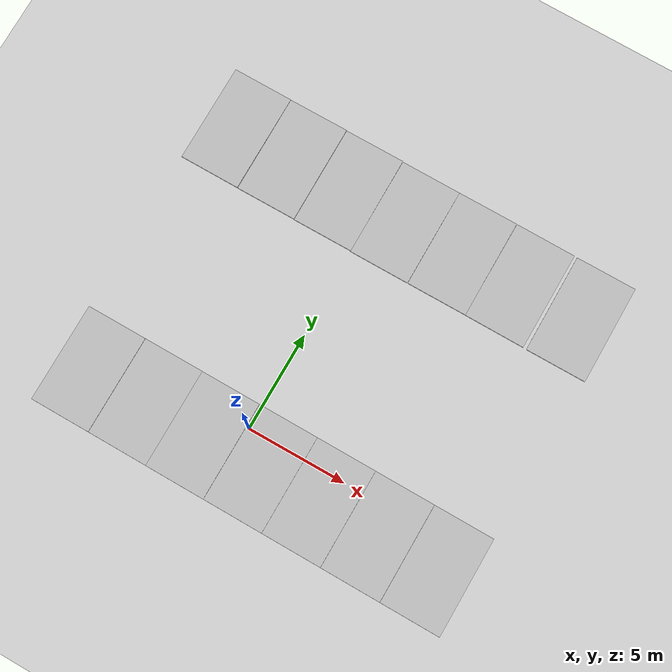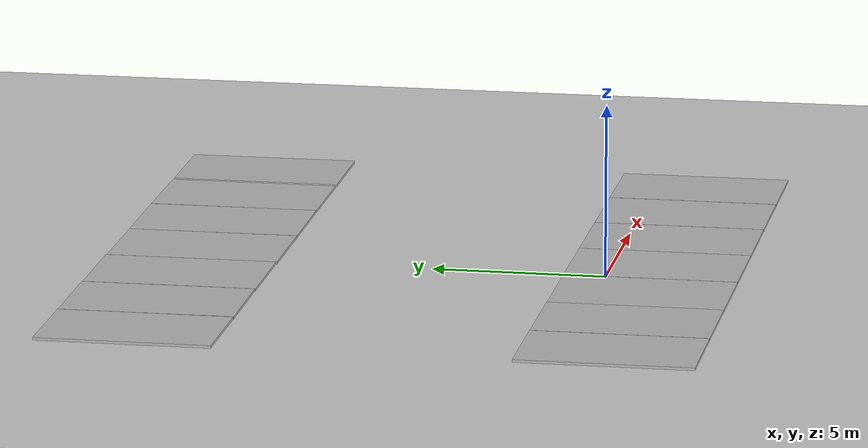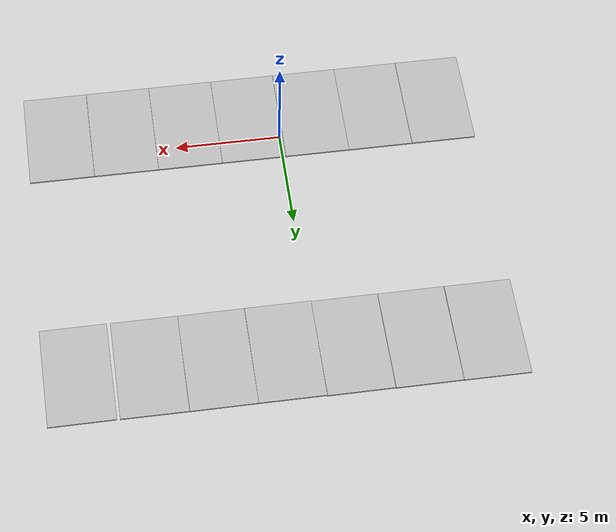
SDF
<sdf version="1.6">
 <world name="default">
  <light name="sun" type="directional">
   <pose>0 0 10 0 -0 0</pose>
   <diffuse>0.8 0.8 0.8 1</diffuse>
   <specular>0.2 0.2 0.2 1</specular>
   <attenuation>
    <range>1000</range>
    <constant>0.9</constant>
    <linear>0.01</linear>
    <quadratic>0.001</quadratic>
   </attenuation>
   <direction>-0.5 0.1 -0.9</direction>
  </light>
  <model name="ground_plane">
   <static>1</static>
   <link name="link">
    <collision name="collision">
     <geometry><plane><normal>0 0 1</normal><size>100 100</size></plane></geometry>
     <surface>
      <contact><collide_bitmask>65535</collide_bitmask></contact>
      <friction><ode><mu>100</mu><mu2>50</mu2></ode></friction>
     </surface>
    </collision>
    <visual name="visual">
     <cast_shadows>0</cast_shadows>
     <geometry><plane><normal>0 0 1</normal><size>100 100</size></plane></geometry>
     <material>
      <script><uri>file://media/materials/scripts/gazebo.material</uri><name>Gazebo/Grey</name></script>
     </material>
    </visual>
   </link>
  </model>
  <gravity>0 0 -9.8</gravity>
  <magnetic_field>6e-06 2.3e-05 -4.2e-05</magnetic_field>
  <atmosphere type="adiabatic"/>
  <physics name="default_physics" default="0" type="ode">
   <max_step_size>0.001</max_step_size>
   <real_time_factor>1</real_time_factor>
   <real_time_update_rate>1000</real_time_update_rate>
  </physics>
  <scene><ambient>0.4 0.4 0.4 1</ambient><background>0.7 0.7 0.7 1</background><shadows>1</shadows></scene>
  <spherical_coordinates>
   <surface_model>EARTH_WGS84</surface_model>
   <latitude_deg>0</latitude_deg>
   <longitude_deg>0</longitude_deg>
   <elevation>0</elevation>
   <heading_deg>0</heading_deg>
  </spherical_coordinates>
  <model name="parking_space_yellow">
   <pose>-1.68805 -1.30823 0 0 -0 0</pose>
   <static>1</static>
   <link name="link">
    <inertial>
     <mass>1</mass>
     <inertia><ixx>1</ixx><iyy>1</iyy><izz>1</izz><ixy>0</ixy><ixz>0</ixz><iyz>0</iyz></inertia>
    </inertial>
    <visual name="visual">
     <geometry><mesh><uri>model://parking_space_yellow/meshes/parking_space.dae</uri></mesh></geometry>
    </visual>
    <collision name="collision">
     <geometry><mesh><uri>model://parking_space_yellow/meshes/parking_space.dae</uri></mesh></geometry>
    </collision>
   </link>
  </model>
  <model name="parking_space">
   <pose>1.36926 -1.30707 0 0 -0 0</pose>
   <static>1</static>
   <link name="link">
    <inertial>
     <mass>1</mass>
     <inertia><ixx>1</ixx><iyy>1</iyy><izz>1</izz><ixy>0</ixy><ixz>0</ixz><iyz>0</iyz></inertia>
    </inertial>
    <visual name="visual">
     <geometry><mesh><uri>model://parking_space/meshes/parking_space.dae</uri></mesh></geometry>
    </visual>
    <collision name="collision">
     <geometry><mesh><uri>model://parking_space/meshes/parking_space.dae</uri></mesh></geometry>
    </collision>
   </link>
  </model>
  <model name="parking_space_yellow_0">
   <pose>-4.73656 -1.30415 0 0 -0 0</pose>
   <static>1</static>
   <link name="link">
    <inertial>
     <mass>1</mass>
     <inertia><ixx>1</ixx><iyy>1</iyy><izz>1</izz><ixy>0</ixy><ixz>0</ixz><iyz>0</iyz></inertia>
    </inertial>
    <visual name="visual">
     <geometry><mesh><uri>model://parking_space_yellow/meshes/parking_space.dae</uri></mesh></geometry>
    </visual>
    <collision name="collision">
     <geometry><mesh><uri>model://parking_space_yellow/meshes/parking_space.dae</uri></mesh></geometry>
    </collision>
   </link>
  </model>
  <model name="parking_space_yellow_1">
   <pose>-7.79654 -1.30415 0 0 -0 0</pose>
   <static>1</static>
   <link name="link">
    <inertial>
     <mass>1</mass>
     <inertia><ixx>1</ixx><iyy>1</iyy><izz>1</izz><ixy>0</ixy><ixz>0</ixz><iyz>0</iyz></inertia>
    </inertial>
    <visual name="visual">
     <geometry><mesh><uri>model://parking_space_yellow/meshes/parking_space.dae</uri></mesh></geometry>
    </visual>
    <collision name="collision">
     <geometry><mesh><uri>model://parking_space_yellow/meshes/parking_space.dae</uri></mesh></geometry>
    </collision>
   </link>
  </model>
  <model name="parking_space_yellow_2">
   <pose>4.42116 -1.30738 0 0 -0 0</pose>
   <static>1</static>
   <link name="link">
    <inertial>
     <mass>1</mass>
     <inertia><ixx>1</ixx><iyy>1</iyy><izz>1</izz><ixy>0</ixy><ixz>0</ixz><iyz>0</iyz></inertia>
    </inertial>
    <visual name="visual">
     <geometry><mesh><uri>model://parking_space_yellow/meshes/parking_space.dae</uri></mesh></geometry>
    </visual>
    <collision name="collision">
     <geometry><mesh><uri>model://parking_space_yellow/meshes/parking_space.dae</uri></mesh></geometry>
    </collision>
   </link>
  </model>
  <model name="parking_space_yellow_3">
   <pose>7.47595 -1.30903 0 0 -0 0</pose>
   <static>1</static>
   <link name="link">
    <inertial>
     <mass>1</mass>
     <inertia><ixx>1</ixx><iyy>1</iyy><izz>1</izz><ixy>0</ixy><ixz>0</ixz><iyz>0</iyz></inertia>
    </inertial>
    <visual name="visual">
     <geometry><mesh><uri>model://parking_space_yellow/meshes/parking_space.dae</uri></mesh></geometry>
    </visual>
    <collision name="collision">
     <geometry><mesh><uri>model://parking_space_yellow/meshes/parking_space.dae</uri></mesh></geometry>
    </collision>
   </link>
  </model>
  <model name="parking_space_yellow_4">
   <pose>10.5374 -1.30903 0 0 -0 0</pose>
   <static>1</static>
   <link name="link">
    <inertial>
     <mass>1</mass>
     <inertia><ixx>1</ixx><iyy>1</iyy><izz>1</izz><ixy>0</ixy><ixz>0</ixz><iyz>0</iyz></inertia>
    </inertial>
    <visual name="visual">
     <geometry><mesh><uri>model://parking_space_yellow/meshes/parking_space.dae</uri></mesh></geometry>
    </visual>
    <collision name="collision">
     <geometry><mesh><uri>model://parking_space_yellow/meshes/parking_space.dae</uri></mesh></geometry>
    </collision>
   </link>
  </model>
  <model name="parking_space_yellow_4_clone">
   <pose>10.6773 12.0296 0 0 -0 -3.13612</pose>
   <static>1</static>
   <link name="link">
    <inertial>
     <mass>1</mass>
     <inertia><ixx>1</ixx><iyy>1</iyy><izz>1</izz><ixy>0</ixy><ixz>0</ixz><iyz>0</iyz></inertia>
    </inertial>
    <visual name="visual">
     <geometry><mesh><uri>model://parking_space_yellow/meshes/parking_space.dae</uri></mesh></geometry>
    </visual>
    <collision name="collision">
     <geometry><mesh><uri>model://parking_space_yellow/meshes/parking_space.dae</uri></mesh></geometry>
    </collision>
   </link>
  </model>
  <model name="parking_space_yellow_4_clone_clone_0">
   <pose>4.41536 12.0245 0 0 0 -3.13612</pose>
   <static>1</static>
   <link name="link">
    <inertial>
     <mass>1</mass>
     <inertia><ixx>1</ixx><iyy>1</iyy><izz>1</izz><ixy>0</ixy><ixz>0</ixz><iyz>0</iyz></inertia>
    </inertial>
    <visual name="visual">
     <geometry><mesh><uri>model://parking_space_yellow/meshes/parking_space.dae</uri></mesh></geometry>
    </visual>
    <collision name="collision">
     <geometry><mesh><uri>model://parking_space_yellow/meshes/parking_space.dae</uri></mesh></geometry>
    </collision>
   </link>
  </model>
  <model name="parking_space_yellow_5">
   <pose>7.47199 12.0291 0 0 0 -3.14157</pose>
   <static>1</static>
   <link name="link">
    <inertial>
     <mass>1</mass>
     <inertia><ixx>1</ixx><iyy>1</iyy><izz>1</izz><ixy>0</ixy><ixz>0</ixz><iyz>0</iyz></inertia>
    </inertial>
    <visual name="visual">
     <geometry><mesh><uri>model://parking_space_yellow/meshes/parking_space.dae</uri></mesh></geometry>
    </visual>
    <collision name="collision">
     <geometry><mesh><uri>model://parking_space_yellow/meshes/parking_space.dae</uri></mesh></geometry>
    </collision>
   </link>
  </model>
  <model name="parking_space_0">
   <pose>1.35923 12.0104 0 0 0 -3.13867</pose>
   <static>1</static>
   <link name="link">
    <inertial>
     <mass>1</mass>
     <inertia><ixx>1</ixx><iyy>1</iyy><izz>1</izz><ixy>0</ixy><ixz>0</ixz><iyz>0</iyz></inertia>
    </inertial>
    <visual name="visual">
     <geometry><mesh><uri>model://parking_space/meshes/parking_space.dae</uri></mesh></geometry>
    </visual>
    <collision name="collision">
     <geometry><mesh><uri>model://parking_space/meshes/parking_space.dae</uri></mesh></geometry>
    </collision>
   </link>
  </model>
  <model name="parking_space_yellow_4_clone_clone_0_clone">
   <pose>-1.69422 12.0249 0 0 0 -3.13612</pose>
   <static>1</static>
   <link name="link">
    <inertial>
     <mass>1</mass>
     <inertia><ixx>1</ixx><iyy>1</iyy><izz>1</izz><ixy>0</ixy><ixz>0</ixz><iyz>0</iyz></inertia>
    </inertial>
    <visual name="visual">
     <geometry><mesh><uri>model://parking_space_yellow/meshes/parking_space.dae</uri></mesh></geometry>
    </visual>
    <collision name="collision">
     <geometry><mesh><uri>model://parking_space_yellow/meshes/parking_space.dae</uri></mesh></geometry>
    </collision>
   </link>
  </model>
  <model name="parking_space_yellow_4_clone_clone_0_clone_clone">
   <pose>-4.75978 12.0255 0 0 0 -3.13612</pose>
   <static>1</static>
   <link name="link">
    <inertial>
     <mass>1</mass>
     <inertia><ixx>1</ixx><iyy>1</iyy><izz>1</izz><ixy>0</ixy><ixz>0</ixz><iyz>0</iyz></inertia>
    </inertial>
    <visual name="visual">
     <geometry><mesh><uri>model://parking_space_yellow/meshes/parking_space.dae</uri></mesh></geometry>
    </visual>
    <collision name="collision">
     <geometry><mesh><uri>model://parking_space_yellow/meshes/parking_space.dae</uri></mesh></geometry>
    </collision>
   </link>
  </model>
  <model name="parking_space_yellow_6">
   <pose>-7.8269 12.0231 0 0 0 -3.1405</pose>
   <static>1</static>
   <link name="link">
    <inertial>
     <mass>1</mass>
     <inertia><ixx>1</ixx><iyy>1</iyy><izz>1</izz><ixy>0</ixy><ixz>0</ixz><iyz>0</iyz></inertia>
    </inertial>
    <visual name="visual">
     <geometry><mesh><uri>model://parking_space_yellow/meshes/parking_space.dae</uri></mesh></geometry>
    </visual>
    <collision name="collision">
     <geometry><mesh><uri>model://parking_space_yellow/meshes/parking_space.dae</uri></mesh></geometry>
    </collision>
   </link>
  </model>
 </world>
</sdf>
